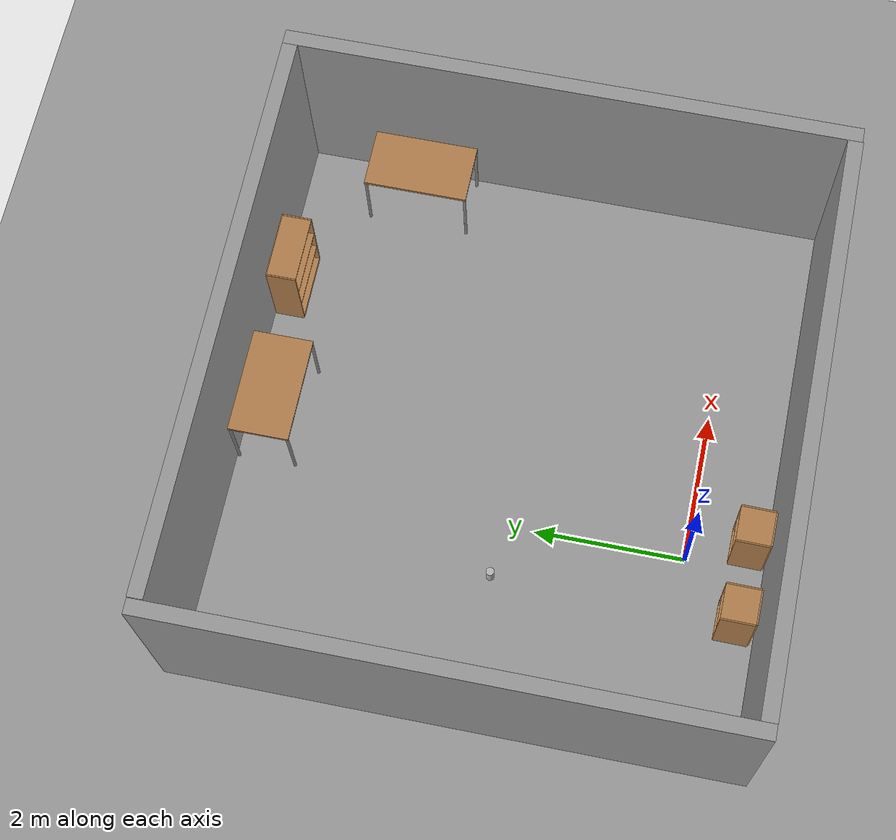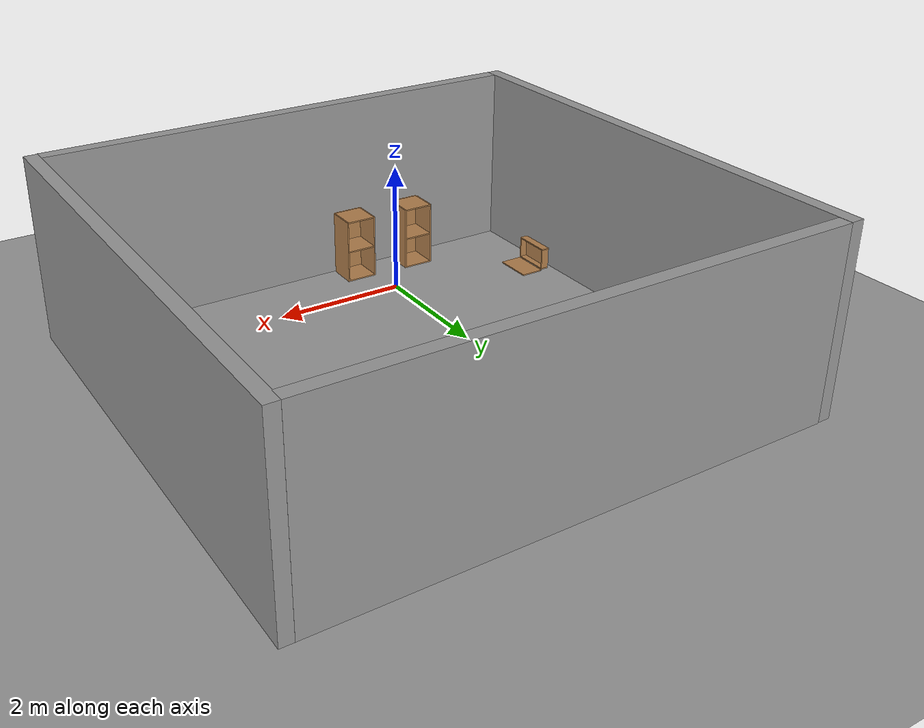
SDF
<sdf version="1.6">
 <world name="default">
  <light name="sun" type="directional">
   <pose>0 0 10 0 -0 0</pose>
   <diffuse>0.8 0.8 0.8 1</diffuse>
   <specular>0.2 0.2 0.2 1</specular>
   <attenuation>
    <range>1000</range>
    <constant>0.9</constant>
    <linear>0.01</linear>
    <quadratic>0.001</quadratic>
   </attenuation>
   <direction>0.5 0.1 -0.9</direction>
  </light>
  <scene><ambient>0.4 0.4 0.4 1</ambient><background>0.7 0.7 0.7 1</background><shadows>1</shadows></scene>
  <physics name="default_physics" default="0" type="ode">
   <max_step_size>0.01</max_step_size>
   <real_time_factor>1</real_time_factor>
   <real_time_update_rate>100</real_time_update_rate>
  </physics>
  <model name="bookshelf">
   <static>1</static>
   <link name="link">
    <inertial><mass>1</mass></inertial>
    <collision name="back">
     <pose>0 0.005 0.6 0 -0 0</pose>
     <geometry><box><size>0.9 0.01 1.2</size></box></geometry>
    </collision>
    <visual name="visual1">
     <pose>0 0.005 0.6 0 -0 0</pose>
     <geometry><box><size>0.9 0.01 1.2</size></box></geometry>
     <material>
      <script><uri>file://media/materials/scripts/gazebo.material</uri><name>Gazebo/Wood</name></script>
     </material>
    </visual>
    <collision name="left_side">
     <pose>0.45 -0.195 0.6 0 -0 0</pose>
     <geometry><box><size>0.02 0.4 1.2</size></box></geometry>
    </collision>
    <visual name="visual2">
     <pose>0.45 -0.195 0.6 0 -0 0</pose>
     <geometry><box><size>0.02 0.4 1.2</size></box></geometry>
     <material>
      <script><uri>file://media/materials/scripts/gazebo.material</uri><name>Gazebo/Wood</name></script>
     </material>
    </visual>
    <collision name="right_side">
     <pose>-0.45 -0.195 0.6 0 -0 0</pose>
     <geometry><box><size>0.02 0.4 1.2</size></box></geometry>
    </collision>
    <visual name="visual3">
     <pose>-0.45 -0.195 0.6 0 -0 0</pose>
     <geometry><box><size>0.02 0.4 1.2</size></box></geometry>
     <material>
      <script><uri>file://media/materials/scripts/gazebo.material</uri><name>Gazebo/Wood</name></script>
     </material>
    </visual>
    <collision name="bottom">
     <pose>0 -0.195 0.03 0 -0 0</pose>
     <geometry><box><size>0.88 0.4 0.06</size></box></geometry>
    </collision>
    <visual name="visual4">
     <pose>0 -0.195 0.03 0 -0 0</pose>
     <geometry><box><size>0.88 0.4 0.06</size></box></geometry>
     <material>
      <script><uri>file://media/materials/scripts/gazebo.material</uri><name>Gazebo/Wood</name></script>
     </material>
    </visual>
    <collision name="top">
     <pose>0 -0.195 1.19 0 -0 0</pose>
     <geometry><box><size>0.88 0.4 0.02</size></box></geometry>
    </collision>
    <visual name="visual5">
     <pose>0 -0.195 1.19 0 -0 0</pose>
     <geometry><box><size>0.88 0.4 0.02</size></box></geometry>
     <material>
      <script><uri>file://media/materials/scripts/gazebo.material</uri><name>Gazebo/Wood</name></script>
     </material>
    </visual>
    <collision name="low_shelf">
     <pose>0 -0.195 0.43 0 -0 0</pose>
     <geometry><box><size>0.88 0.4 0.02</size></box></geometry>
    </collision>
    <visual name="visual6">
     <pose>0 -0.195 0.43 0 -0 0</pose>
     <geometry><box><size>0.88 0.4 0.02</size></box></geometry>
     <material>
      <script><uri>file://media/materials/scripts/gazebo.material</uri><name>Gazebo/Wood</name></script>
     </material>
    </visual>
    <collision name="high_shelf">
     <pose>0 -0.195 0.8 0 -0 0</pose>
     <geometry><box><size>0.88 0.4 0.02</size></box></geometry>
    </collision>
    <visual name="visual7">
     <pose>0 -0.195 0.8 0 -0 0</pose>
     <geometry><box><size>0.88 0.4 0.02</size></box></geometry>
     <material>
      <script><uri>file://media/materials/scripts/gazebo.material</uri><name>Gazebo/Wood</name></script>
     </material>
    </visual>
    <velocity_decay><linear>0</linear><angular>0</angular></velocity_decay>
   </link>
   <pose>2.86492 6.07043 0 0 -0 0</pose>
  </model>
  <model name="ground_plane_0">
   <static>1</static>
   <link name="link">
    <collision name="collision">
     <geometry><plane><normal>0 0 1</normal><size>100 100</size></plane></geometry>
     <surface><friction><ode><mu>100</mu><mu2>50</mu2></ode></friction></surface>
    </collision>
    <visual name="visual">
     <cast_shadows>0</cast_shadows>
     <geometry><plane><normal>0 0 1</normal><size>100 100</size></plane></geometry>
     <material>
      <script><uri>file://media/materials/scripts/gazebo.material</uri><name>Gazebo/Grey</name></script>
     </material>
    </visual>
    <velocity_decay><linear>0</linear><angular>0</angular></velocity_decay>
   </link>
   <pose>0.497681 0 0 0 -0 0</pose>
  </model>
  <gravity>0 0 -9.8</gravity>
  <magnetic_field>6e-06 2.3e-05 -4.2e-05</magnetic_field>
  <atmosphere type="adiabatic"/>
  <spherical_coordinates>
   <surface_model>EARTH_WGS84</surface_model>
   <latitude_deg>0</latitude_deg>
   <longitude_deg>0</longitude_deg>
   <elevation>0</elevation>
   <heading_deg>0</heading_deg>
  </spherical_coordinates>
  <model name="cabinet">
   <static>1</static>
   <link name="cabinet_bottom_plate">
    <inertial>
     <pose>0 0 -1 0 -0 0</pose>
     <inertia><ixx>2.05</ixx><ixy>0</ixy><ixz>0</ixz><iyy>2.05</iyy><iyz>0</iyz><izz>2.05</izz></inertia>
     <mass>25</mass>
    </inertial>
    <collision name="cabinet_bottom_plate_geom">
     <pose>0 0 0.01 0 -0 0</pose>
     <geometry><box><size>0.45 0.45 0.02</size></box></geometry>
    </collision>
    <visual name="cabinet_bottom_plate_geom_visual">
     <pose>0 0 0.01 0 -0 0</pose>
     <geometry><box><size>0.45 0.45 0.02</size></box></geometry>
     <material>
      <script><uri>file://media/materials/scripts/gazebo.material</uri><name>Gazebo/Wood</name></script>
     </material>
    </visual>
    <collision name="cabinet_bottom_plate_geom_cabinet_back_plate">
     <pose>0.235 0 0.51 0 -0 0</pose>
     <geometry><box><size>0.02 0.45 1.02</size></box></geometry>
    </collision>
    <visual name="cabinet_bottom_plate_geom_cabinet_back_plate_visual">
     <pose>0.235 0 0.51 0 -0 0</pose>
     <geometry><box><size>0.02 0.45 1.02</size></box></geometry>
     <material>
      <script><uri>file://media/materials/scripts/gazebo.material</uri><name>Gazebo/Wood</name></script>
     </material>
    </visual>
    <collision name="cabinet_bottom_plate_geom_cabinet_left_plate">
     <pose>0 0.235 0.51 0 -0 0</pose>
     <geometry><box><size>0.45 0.02 1.02</size></box></geometry>
    </collision>
    <visual name="cabinet_bottom_plate_geom_cabinet_left_plate_visual">
     <pose>0 0.235 0.51 0 -0 0</pose>
     <geometry><box><size>0.45 0.02 1.02</size></box></geometry>
     <material>
      <script><uri>file://media/materials/scripts/gazebo.material</uri><name>Gazebo/Wood</name></script>
     </material>
    </visual>
    <collision name="cabinet_bottom_plate_geom_cabinet_middle_plate">
     <pose>0 0 0.51 0 -0 0</pose>
     <geometry><box><size>0.45 0.45 0.02</size></box></geometry>
    </collision>
    <visual name="cabinet_bottom_plate_geom_cabinet_middle_plate_visual">
     <pose>0 0 0.51 0 -0 0</pose>
     <geometry><box><size>0.45 0.45 0.02</size></box></geometry>
     <material>
      <script><uri>file://media/materials/scripts/gazebo.material</uri><name>Gazebo/Wood</name></script>
     </material>
    </visual>
    <collision name="cabinet_bottom_plate_geom_cabinet_right_plate">
     <pose>0 -0.235 0.51 0 -0 0</pose>
     <geometry><box><size>0.45 0.02 1.02</size></box></geometry>
    </collision>
    <visual name="cabinet_bottom_plate_geom_cabinet_right_plate_visual">
     <pose>0 -0.235 0.51 0 -0 0</pose>
     <geometry><box><size>0.45 0.02 1.02</size></box></geometry>
     <material>
      <script><uri>file://media/materials/scripts/gazebo.material</uri><name>Gazebo/Wood</name></script>
     </material>
    </visual>
    <collision name="cabinet_bottom_plate_geom_cabinet_top_plate">
     <pose>0 0 1.01 0 -0 0</pose>
     <geometry><box><size>0.45 0.45 0.02</size></box></geometry>
    </collision>
    <visual name="cabinet_bottom_plate_geom_cabinet_top_plate_visual">
     <pose>0 0 1.01 0 -0 0</pose>
     <geometry><box><size>0.45 0.45 0.02</size></box></geometry>
     <material>
      <script><uri>file://media/materials/scripts/gazebo.material</uri><name>Gazebo/Wood</name></script>
     </material>
    </visual>
   </link>
   <pose>-0.735124 -0.738265 0 0 0 -1.58319</pose>
  </model>
  <model name="grey_wall">
   <static>1</static>
   <link name="link">
    <pose>0 0 1.4 0 -0 0</pose>
    <collision name="collision"><geometry><box><size>7.5 0.2 2.8</size></box></geometry></collision>
    <visual name="visual">
     <cast_shadows>0</cast_shadows>
     <geometry><box><size>7.5 0.2 2.8</size></box></geometry>
     <material>
      <script>
       <uri>model://grey_wall/materials/scripts</uri>
       <uri>model://grey_wall/materials/textures</uri>
       <name>vrc/grey_wall</name>
      </script>
     </material>
    </visual>
   </link>
   <pose>-2.64343 2.52688 0 0 -0 1.57079</pose>
  </model>
  <model name="grey_wall_0">
   <static>1</static>
   <link name="link">
    <pose>0 0 1.4 0 -0 0</pose>
    <collision name="collision"><geometry><box><size>7.5 0.2 2.8</size></box></geometry></collision>
    <visual name="visual">
     <cast_shadows>0</cast_shadows>
     <geometry><box><size>7.5 0.2 2.8</size></box></geometry>
     <material>
      <script>
       <uri>model://grey_wall/materials/scripts</uri>
       <uri>model://grey_wall/materials/textures</uri>
       <name>vrc/grey_wall</name>
      </script>
     </material>
    </visual>
   </link>
   <pose>1.21272 6.18656 0 0 -0 0</pose>
  </model>
  <model name="grey_wall_0_clone">
   <static>1</static>
   <link name="link">
    <pose>0 0 1.4 0 -0 0</pose>
    <collision name="collision"><geometry><box><size>7.5 0.2 2.8</size></box></geometry></collision>
    <visual name="visual">
     <cast_shadows>0</cast_shadows>
     <geometry><box><size>7.5 0.2 2.8</size></box></geometry>
     <material>
      <script>
       <uri>model://grey_wall/materials/scripts</uri>
       <uri>model://grey_wall/materials/textures</uri>
       <name>vrc/grey_wall</name>
      </script>
     </material>
    </visual>
   </link>
   <pose>1.20599 -1.12598 0 0 -0 0</pose>
  </model>
  <model name="grey_wall_clone">
   <static>1</static>
   <link name="link">
    <pose>0 0 1.4 0 -0 0</pose>
    <collision name="collision"><geometry><box><size>7.5 0.2 2.8</size></box></geometry></collision>
    <visual name="visual">
     <cast_shadows>0</cast_shadows>
     <geometry><box><size>7.5 0.2 2.8</size></box></geometry>
     <material>
      <script>
       <uri>model://grey_wall/materials/scripts</uri>
       <uri>model://grey_wall/materials/textures</uri>
       <name>vrc/grey_wall</name>
      </script>
     </material>
    </visual>
   </link>
   <pose>5.0505 2.53584 0 0 -0 1.57079</pose>
  </model>
  <model name="table">
   <static>0</static>
   <link name="link">
    <collision name="surface">
     <pose>0 0 1 0 -0 0</pose>
     <geometry><box><size>1.5 0.8 0.03</size></box></geometry>
     <surface><friction><ode><mu>0.6</mu><mu2>0.6</mu2></ode></friction></surface>
    </collision>
    <visual name="visual1">
     <pose>0 0 1 0 -0 0</pose>
     <geometry><box><size>1.4 0.8 0.04</size></box></geometry>
     <material>
      <script><uri>file://media/materials/scripts/gazebo.material</uri><name>Gazebo/Wood</name></script>
     </material>
    </visual>
    <collision name="front_left_leg">
     <pose>0.68 0.38 0.5 0 -0 0</pose>
     <geometry><cylinder><radius>0.02</radius><length>1</length></cylinder></geometry>
    </collision>
    <visual name="front_left_leg">
     <pose>0.68 0.38 0.5 0 -0 0</pose>
     <geometry><cylinder><radius>0.02</radius><length>1</length></cylinder></geometry>
     <material>
      <script><uri>file://media/materials/scripts/gazebo.material</uri><name>Gazebo/Grey</name></script>
     </material>
    </visual>
    <collision name="front_right_leg">
     <pose>0.68 -0.38 0.5 0 -0 0</pose>
     <geometry><cylinder><radius>0.02</radius><length>1</length></cylinder></geometry>
    </collision>
    <visual name="front_right_leg">
     <pose>0.68 -0.38 0.5 0 -0 0</pose>
     <geometry><cylinder><radius>0.02</radius><length>1</length></cylinder></geometry>
     <material>
      <script><uri>file://media/materials/scripts/gazebo.material</uri><name>Gazebo/Grey</name></script>
     </material>
    </visual>
    <collision name="back_right_leg">
     <pose>-0.68 -0.38 0.5 0 -0 0</pose>
     <geometry><cylinder><radius>0.02</radius><length>1</length></cylinder></geometry>
    </collision>
    <visual name="back_right_leg">
     <pose>-0.68 -0.38 0.5 0 -0 0</pose>
     <geometry><cylinder><radius>0.02</radius><length>1</length></cylinder></geometry>
     <material>
      <script><uri>file://media/materials/scripts/gazebo.material</uri><name>Gazebo/Grey</name></script>
     </material>
    </visual>
    <collision name="back_left_leg">
     <pose>-0.68 0.38 0.5 0 -0 0</pose>
     <geometry><cylinder><radius>0.02</radius><length>1</length></cylinder></geometry>
    </collision>
    <visual name="back_left_leg">
     <pose>-0.68 0.38 0.5 0 -0 0</pose>
     <geometry><cylinder><radius>0.02</radius><length>1</length></cylinder></geometry>
     <material>
      <script><uri>file://media/materials/scripts/gazebo.material</uri><name>Gazebo/Grey</name></script>
     </material>
    </visual>
    <inertial>
     <inertia><ixx>1</ixx><ixy>0</ixy><ixz>0</ixz><iyy>1</iyy><iyz>0</iyz><izz>1</izz></inertia>
     <mass>1</mass>
    </inertial>
   </link>
   <pose>0.978898 5.67676 -0.000134 0 0.000205 0</pose>
  </model>
  <model name="wooden_case">
   <link name="base">
    <pose>0 0 0.024 0 -0 0</pose>
    <inertial>
     <pose>-0.022184 0 0.171592 0 -0 0</pose>
     <mass>3.96264</mass>
     <inertia>
      <ixx>0.213536</ixx>
      <ixy>0</ixy>
      <ixz>0.000779377</ixz>
      <iyy>0.0708943</iyy>
      <iyz>0</iyz>
      <izz>0.154604</izz>
     </inertia>
    </inertial>
    <collision name="collision_back">
     <pose>-0.053975 0 0.1778 0 -0 0</pose>
     <geometry><box><size>0.01905 0.5461 0.3175</size></box></geometry>
     <surface>
      <contact>
       <poissons_ratio>0.347</poissons_ratio>
       <elastic_modulus>8.8e+09</elastic_modulus>
       <ode><kp>100000</kp><kd>100</kd><max_vel>100</max_vel><min_depth>0.001</min_depth></ode>
      </contact>
      <friction>
       <torsional>
        <coefficient>1</coefficient>
        <use_patch_radius>0</use_patch_radius>
        <surface_radius>0.01</surface_radius>
       </torsional>
      </friction>
     </surface>
    </collision>
    <visual name="visual_back">
     <pose>-0.053975 0 0.1778 0 -0 0</pose>
     <geometry><box><size>0.01905 0.5461 0.3175</size></box></geometry>
     <material>
      <script><uri>file://media/materials/scripts/gazebo.material</uri><name>Gazebo/Wood</name></script>
     </material>
    </visual>
    <collision name="collision_bottom">
     <pose>0 0 0.009525 0 -0 0</pose>
     <geometry><box><size>0.127 0.5842 0.01905</size></box></geometry>
     <surface>
      <contact>
       <poissons_ratio>0.347</poissons_ratio>
       <elastic_modulus>8.8e+09</elastic_modulus>
       <ode><kp>100000</kp><kd>100</kd><max_vel>100</max_vel><min_depth>0.001</min_depth></ode>
      </contact>
      <friction>
       <torsional>
        <coefficient>1</coefficient>
        <use_patch_radius>0</use_patch_radius>
        <surface_radius>0.01</surface_radius>
       </torsional>
      </friction>
     </surface>
    </collision>
    <visual name="visual_bottom">
     <pose>0 0 0.009525 0 -0 0</pose>
     <geometry><box><size>0.127 0.5842 0.01905</size></box></geometry>
     <material>
      <script><uri>file://media/materials/scripts/gazebo.material</uri><name>Gazebo/Wood</name></script>
     </material>
    </visual>
    <collision name="collision_top">
     <pose>0 0 0.346075 0 -0 0</pose>
     <geometry><box><size>0.127 0.5842 0.01905</size></box></geometry>
     <surface>
      <contact>
       <poissons_ratio>0.347</poissons_ratio>
       <elastic_modulus>8.8e+09</elastic_modulus>
       <ode><kp>100000</kp><kd>100</kd><max_vel>100</max_vel><min_depth>0.001</min_depth></ode>
      </contact>
      <friction>
       <torsional>
        <coefficient>1</coefficient>
        <use_patch_radius>0</use_patch_radius>
        <surface_radius>0.01</surface_radius>
       </torsional>
      </friction>
     </surface>
    </collision>
    <visual name="visual_top">
     <pose>0 0 0.346075 0 -0 0</pose>
     <geometry><box><size>0.127 0.5842 0.01905</size></box></geometry>
     <material>
      <script><uri>file://media/materials/scripts/gazebo.material</uri><name>Gazebo/Wood</name></script>
     </material>
    </visual>
    <collision name="collision_left">
     <pose>0 -0.282575 0.1778 0 -0 0</pose>
     <geometry><box><size>0.127 0.01905 0.3175</size></box></geometry>
     <surface>
      <contact>
       <poissons_ratio>0.347</poissons_ratio>
       <elastic_modulus>8.8e+09</elastic_modulus>
       <ode><kp>100000</kp><kd>100</kd><max_vel>100</max_vel><min_depth>0.001</min_depth></ode>
      </contact>
      <friction>
       <torsional>
        <coefficient>1</coefficient>
        <use_patch_radius>0</use_patch_radius>
        <surface_radius>0.01</surface_radius>
       </torsional>
      </friction>
     </surface>
    </collision>
    <visual name="visual_left">
     <pose>0 -0.282575 0.1778 0 -0 0</pose>
     <geometry><box><size>0.127 0.01905 0.3175</size></box></geometry>
     <material>
      <script><uri>file://media/materials/scripts/gazebo.material</uri><name>Gazebo/Wood</name></script>
     </material>
    </visual>
    <collision name="collision_right">
     <pose>0 0.282575 0.1778 0 -0 0</pose>
     <geometry><box><size>0.127 0.01905 0.3175</size></box></geometry>
     <surface>
      <contact>
       <poissons_ratio>0.347</poissons_ratio>
       <elastic_modulus>8.8e+09</elastic_modulus>
       <ode><kp>100000</kp><kd>100</kd><max_vel>100</max_vel><min_depth>0.001</min_depth></ode>
      </contact>
      <friction>
       <torsional>
        <coefficient>1</coefficient>
        <use_patch_radius>0</use_patch_radius>
        <surface_radius>0.01</surface_radius>
       </torsional>
      </friction>
     </surface>
    </collision>
    <visual name="visual_right">
     <pose>0 0.282575 0.1778 0 -0 0</pose>
     <geometry><box><size>0.127 0.01905 0.3175</size></box></geometry>
     <material>
      <script><uri>file://media/materials/scripts/gazebo.material</uri><name>Gazebo/Wood</name></script>
     </material>
    </visual>
    <collision name="collision_block_left">
     <pose>0.0095 -0.2151 -0.012 0 -0 0</pose>
     <geometry><box><size>0.108 0.05 0.024</size></box></geometry>
     <surface>
      <contact>
       <poissons_ratio>0.347</poissons_ratio>
       <elastic_modulus>8.8e+09</elastic_modulus>
       <ode><kp>100000</kp><kd>100</kd><max_vel>100</max_vel><min_depth>0.001</min_depth></ode>
      </contact>
      <friction>
       <torsional>
        <coefficient>1</coefficient>
        <use_patch_radius>0</use_patch_radius>
        <surface_radius>0.01</surface_radius>
       </torsional>
      </friction>
     </surface>
    </collision>
    <visual name="visual_block_left">
     <pose>0.0095 -0.2151 -0.012 0 -0 0</pose>
     <geometry><box><size>0.108 0.05 0.024</size></box></geometry>
     <material>
      <script><uri>file://media/materials/scripts/gazebo.material</uri><name>Gazebo/Wood</name></script>
     </material>
    </visual>
    <collision name="collision_block_right">
     <pose>0.0095 0.2151 -0.012 0 -0 0</pose>
     <geometry><box><size>0.108 0.05 0.024</size></box></geometry>
     <surface>
      <contact>
       <poissons_ratio>0.347</poissons_ratio>
       <elastic_modulus>8.8e+09</elastic_modulus>
       <ode><kp>100000</kp><kd>100</kd><max_vel>100</max_vel><min_depth>0.001</min_depth></ode>
      </contact>
      <friction>
       <torsional>
        <coefficient>1</coefficient>
        <use_patch_radius>0</use_patch_radius>
        <surface_radius>0.01</surface_radius>
       </torsional>
      </friction>
     </surface>
    </collision>
    <visual name="visual_block_right">
     <pose>0.0095 0.2151 -0.012 0 -0 0</pose>
     <geometry><box><size>0.108 0.05 0.024</size></box></geometry>
     <material>
      <script><uri>file://media/materials/scripts/gazebo.material</uri><name>Gazebo/Wood</name></script>
     </material>
    </visual>
   </link>
   <link name="lid">
    <pose>0.243775 0 0.009525 0 -0 0</pose>
    <inertial>
     <mass>1.97874</mass>
     <inertia>
      <ixx>0.0563367</ixx>
      <ixy>0</ixy>
      <ixz>0</ixz>
      <iyy>0.020911</iyy>
      <iyz>0</iyz>
      <izz>0.0771281</izz>
     </inertia>
    </inertial>
    <collision name="collision">
     <geometry><box><size>0.3556 0.5842 0.01905</size></box></geometry>
     <surface>
      <contact>
       <poissons_ratio>0.347</poissons_ratio>
       <elastic_modulus>8.8e+09</elastic_modulus>
       <ode><kp>100000</kp><kd>100</kd><max_vel>100</max_vel><min_depth>0.001</min_depth></ode>
      </contact>
      <friction>
       <torsional>
        <coefficient>1</coefficient>
        <use_patch_radius>0</use_patch_radius>
        <surface_radius>0.01</surface_radius>
       </torsional>
      </friction>
     </surface>
    </collision>
    <visual name="visual">
     <geometry><box><size>0.3556 0.5842 0.01905</size></box></geometry>
     <material>
      <script><uri>file://media/materials/scripts/gazebo.material</uri><name>Gazebo/Wood</name></script>
     </material>
    </visual>
    <visual name="tee_nut_1">
     <pose>0.122 -0.216 0 0 -0 0</pose>
     <geometry><cylinder><radius>0.00635</radius><length>0.0192405</length></cylinder></geometry>
     <material>
      <script><uri>file://media/materials/scripts/gazebo.material</uri><name>Gazebo/Grey</name></script>
     </material>
    </visual>
    <visual name="tee_nut_2">
     <pose>0.122 -0.088 0 0 -0 0</pose>
     <geometry><cylinder><radius>0.00635</radius><length>0.0192405</length></cylinder></geometry>
     <material>
      <script><uri>file://media/materials/scripts/gazebo.material</uri><name>Gazebo/Grey</name></script>
     </material>
    </visual>
    <visual name="tee_nut_3">
     <pose>0.122 0.088 0 0 -0 0</pose>
     <geometry><cylinder><radius>0.00635</radius><length>0.0192405</length></cylinder></geometry>
     <material>
      <script><uri>file://media/materials/scripts/gazebo.material</uri><name>Gazebo/Grey</name></script>
     </material>
    </visual>
    <visual name="tee_nut_4">
     <pose>0.122 0.216 0 0 -0 0</pose>
     <geometry><cylinder><radius>0.00635</radius><length>0.0192405</length></cylinder></geometry>
     <material>
      <script><uri>file://media/materials/scripts/gazebo.material</uri><name>Gazebo/Grey</name></script>
     </material>
    </visual>
   </link>
   <joint name="lid_hinge" type="revolute">
    <pose>-0.1778 0 0.01905 0 -0 0</pose>
    <parent>base</parent>
    <child>lid</child>
    <axis>
     <xyz>0 1 0</xyz>
     <limit><upper>0.523599</upper><lower>-1.5708</lower></limit>
     <use_parent_model_frame>0</use_parent_model_frame>
     <dynamics><spring_reference>0</spring_reference><spring_stiffness>0</spring_stiffness></dynamics>
    </axis>
   </joint>
   <pose>-2.36905 0.458331 -0.001055 9e-06 -0.00047 1.2e-05</pose>
  </model>
  <plugin name="collision_map_creator" filename="/home/ubuntu/collision_map_creator_plugin/build/libcollision_map_creator.so"/>
  <model name="cabinet_0">
   <static>1</static>
   <link name="cabinet_bottom_plate">
    <inertial>
     <pose>0 0 -1 0 -0 0</pose>
     <inertia><ixx>2.05</ixx><ixy>0</ixy><ixz>0</ixz><iyy>2.05</iyy><iyz>0</iyz><izz>2.05</izz></inertia>
     <mass>25</mass>
    </inertial>
    <collision name="cabinet_bottom_plate_geom">
     <pose>0 0 0.01 0 -0 0</pose>
     <geometry><box><size>0.45 0.45 0.02</size></box></geometry>
    </collision>
    <visual name="cabinet_bottom_plate_geom_visual">
     <pose>0 0 0.01 0 -0 0</pose>
     <geometry><box><size>0.45 0.45 0.02</size></box></geometry>
     <material>
      <script><uri>file://media/materials/scripts/gazebo.material</uri><name>Gazebo/Wood</name></script>
     </material>
    </visual>
    <collision name="cabinet_bottom_plate_geom_cabinet_back_plate">
     <pose>0.235 0 0.51 0 -0 0</pose>
     <geometry><box><size>0.02 0.45 1.02</size></box></geometry>
    </collision>
    <visual name="cabinet_bottom_plate_geom_cabinet_back_plate_visual">
     <pose>0.235 0 0.51 0 -0 0</pose>
     <geometry><box><size>0.02 0.45 1.02</size></box></geometry>
     <material>
      <script><uri>file://media/materials/scripts/gazebo.material</uri><name>Gazebo/Wood</name></script>
     </material>
    </visual>
    <collision name="cabinet_bottom_plate_geom_cabinet_left_plate">
     <pose>0 0.235 0.51 0 -0 0</pose>
     <geometry><box><size>0.45 0.02 1.02</size></box></geometry>
    </collision>
    <visual name="cabinet_bottom_plate_geom_cabinet_left_plate_visual">
     <pose>0 0.235 0.51 0 -0 0</pose>
     <geometry><box><size>0.45 0.02 1.02</size></box></geometry>
     <material>
      <script><uri>file://media/materials/scripts/gazebo.material</uri><name>Gazebo/Wood</name></script>
     </material>
    </visual>
    <collision name="cabinet_bottom_plate_geom_cabinet_middle_plate">
     <pose>0 0 0.51 0 -0 0</pose>
     <geometry><box><size>0.45 0.45 0.02</size></box></geometry>
    </collision>
    <visual name="cabinet_bottom_plate_geom_cabinet_middle_plate_visual">
     <pose>0 0 0.51 0 -0 0</pose>
     <geometry><box><size>0.45 0.45 0.02</size></box></geometry>
     <material>
      <script><uri>file://media/materials/scripts/gazebo.material</uri><name>Gazebo/Wood</name></script>
     </material>
    </visual>
    <collision name="cabinet_bottom_plate_geom_cabinet_right_plate">
     <pose>0 -0.235 0.51 0 -0 0</pose>
     <geometry><box><size>0.45 0.02 1.02</size></box></geometry>
    </collision>
    <visual name="cabinet_bottom_plate_geom_cabinet_right_plate_visual">
     <pose>0 -0.235 0.51 0 -0 0</pose>
     <geometry><box><size>0.45 0.02 1.02</size></box></geometry>
     <material>
      <script><uri>file://media/materials/scripts/gazebo.material</uri><name>Gazebo/Wood</name></script>
     </material>
    </visual>
    <collision name="cabinet_bottom_plate_geom_cabinet_top_plate">
     <pose>0 0 1.01 0 -0 0</pose>
     <geometry><box><size>0.45 0.45 0.02</size></box></geometry>
    </collision>
    <visual name="cabinet_bottom_plate_geom_cabinet_top_plate_visual">
     <pose>0 0 1.01 0 -0 0</pose>
     <geometry><box><size>0.45 0.45 0.02</size></box></geometry>
     <material>
      <script><uri>file://media/materials/scripts/gazebo.material</uri><name>Gazebo/Wood</name></script>
     </material>
    </visual>
   </link>
   <pose>0.301918 -0.771503 0 0 0 -1.58319</pose>
  </model>
  <model name="table_0">
   <static>0</static>
   <link name="link">
    <collision name="surface">
     <pose>0 0 1 0 -0 0</pose>
     <geometry><box><size>1.5 0.8 0.03</size></box></geometry>
     <surface><friction><ode><mu>0.6</mu><mu2>0.6</mu2></ode></friction></surface>
    </collision>
    <visual name="visual1">
     <pose>0 0 1 0 -0 0</pose>
     <geometry><box><size>1.4 0.8 0.04</size></box></geometry>
     <material>
      <script><uri>file://media/materials/scripts/gazebo.material</uri><name>Gazebo/Wood</name></script>
     </material>
    </visual>
    <collision name="front_left_leg">
     <pose>0.68 0.38 0.5 0 -0 0</pose>
     <geometry><cylinder><radius>0.02</radius><length>1</length></cylinder></geometry>
    </collision>
    <visual name="front_left_leg">
     <pose>0.68 0.38 0.5 0 -0 0</pose>
     <geometry><cylinder><radius>0.02</radius><length>1</length></cylinder></geometry>
     <material>
      <script><uri>file://media/materials/scripts/gazebo.material</uri><name>Gazebo/Grey</name></script>
     </material>
    </visual>
    <collision name="front_right_leg">
     <pose>0.68 -0.38 0.5 0 -0 0</pose>
     <geometry><cylinder><radius>0.02</radius><length>1</length></cylinder></geometry>
    </collision>
    <visual name="front_right_leg">
     <pose>0.68 -0.38 0.5 0 -0 0</pose>
     <geometry><cylinder><radius>0.02</radius><length>1</length></cylinder></geometry>
     <material>
      <script><uri>file://media/materials/scripts/gazebo.material</uri><name>Gazebo/Grey</name></script>
     </material>
    </visual>
    <collision name="back_right_leg">
     <pose>-0.68 -0.38 0.5 0 -0 0</pose>
     <geometry><cylinder><radius>0.02</radius><length>1</length></cylinder></geometry>
    </collision>
    <visual name="back_right_leg">
     <pose>-0.68 -0.38 0.5 0 -0 0</pose>
     <geometry><cylinder><radius>0.02</radius><length>1</length></cylinder></geometry>
     <material>
      <script><uri>file://media/materials/scripts/gazebo.material</uri><name>Gazebo/Grey</name></script>
     </material>
    </visual>
    <collision name="back_left_leg">
     <pose>-0.68 0.38 0.5 0 -0 0</pose>
     <geometry><cylinder><radius>0.02</radius><length>1</length></cylinder></geometry>
    </collision>
    <visual name="back_left_leg">
     <pose>-0.68 0.38 0.5 0 -0 0</pose>
     <geometry><cylinder><radius>0.02</radius><length>1</length></cylinder></geometry>
     <material>
      <script><uri>file://media/materials/scripts/gazebo.material</uri><name>Gazebo/Grey</name></script>
     </material>
    </visual>
    <inertial>
     <inertia><ixx>1</ixx><ixy>0</ixy><ixz>0</ixz><iyy>1</iyy><iyz>0</iyz><izz>1</izz></inertia>
     <mass>1</mass>
    </inertial>
   </link>
   <pose>4.49148 4.44802 -0.000136 5e-06 0.000208 1.57063</pose>
  </model>
  <model name="beer">
   <link name="link">
    <pose>0 0 0.115 0 -0 0</pose>
    <inertial>
     <mass>0.39</mass>
     <inertia><ixx>0.00058</ixx><ixy>0</ixy><ixz>0</ixz><iyy>0.00058</iyy><iyz>0</iyz><izz>0.00019</izz></inertia>
    </inertial>
    <collision name="collision">
     <geometry><cylinder><radius>0.055</radius><length>0.23</length></cylinder></geometry>
    </collision>
    <visual name="visual">
     <geometry><cylinder><radius>0.055</radius><length>0.23</length></cylinder></geometry>
     <material>
      <script>
       <uri>model://beer/materials/scripts</uri>
       <uri>model://beer/materials/textures</uri>
       <name>Beer/Diffuse</name>
      </script>
     </material>
    </visual>
   </link>
   <pose>-0.702679 2.4469 -0.00088 5e-05 1e-05 0.001154</pose>
  </model>
 </world>
</sdf>
